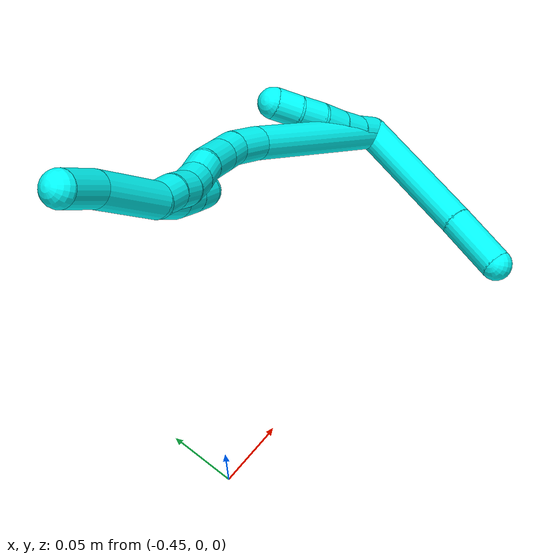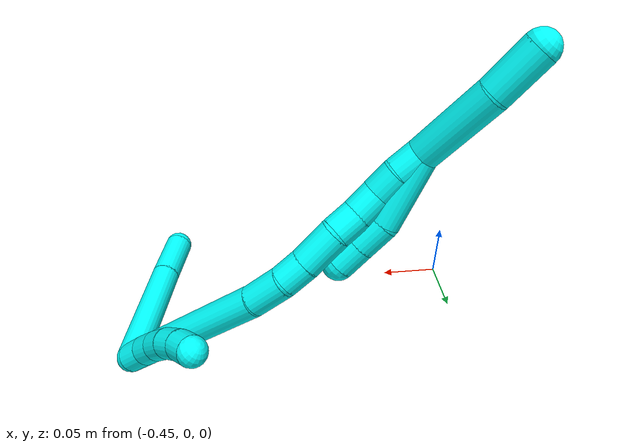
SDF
<sdf version="1.7">
 <world name="default">
  <model name="3">
   <static>0</static>
   <link name="3">
    <collision name="collision-cylinder-e_1_2_8">
     <pose>0.019307 -0.04758 -0.002553 1.62439 0.384974 0.405619</pose>
     <geometry><cylinder><radius>0.0125</radius><length>0.102823</length></cylinder></geometry>
     <surface>
      <friction><ode><mu>1.16</mu><mu2>1.16</mu2><slip1>0</slip1><slip2>0</slip2></ode></friction>
      <contact><ode><kp>1e+06</kp><kd>1</kd><max_vel>0</max_vel><min_depth>0.001</min_depth></ode></contact>
     </surface>
    </collision>
    <visual name="visual-cylinder-e_1_2_8">
     <pose>0.019307 -0.04758 -0.002553 1.62439 0.384974 0.405619</pose>
     <geometry><cylinder><radius>0.0125</radius><length>0.102823</length></cylinder></geometry>
     <material><ambient>0.003922 1 0.996078 1</ambient></material>
    </visual>
    <collision name="collision-cylinder-e_2_8_6">
     <pose>0.046954 -0.117173 -0.006626 1.63977 0.361369 0.386578</pose>
     <geometry><cylinder><radius>0.0125</radius><length>0.047177</length></cylinder></geometry>
     <surface>
      <friction><ode><mu>1.16</mu><mu2>1.16</mu2><slip1>0</slip1><slip2>0</slip2></ode></friction>
      <contact><ode><kp>1e+06</kp><kd>1</kd><max_vel>0</max_vel><min_depth>0.001</min_depth></ode></contact>
     </surface>
    </collision>
    <visual name="visual-cylinder-e_2_8_6">
     <pose>0.046954 -0.117173 -0.006626 1.63977 0.361369 0.386578</pose>
     <geometry><cylinder><radius>0.0125</radius><length>0.047177</length></cylinder></geometry>
     <material><ambient>0.003922 1 0.996078 1</ambient></material>
    </visual>
    <collision name="collision-cylinder-e_1_2_9">
     <pose>-0.001733 -9.4e-05 0.009848 0.009508 -0.174179 -0.00083</pose>
     <geometry><cylinder><radius>0.0125</radius><length>0.02</length></cylinder></geometry>
     <surface>
      <friction><ode><mu>1.16</mu><mu2>1.16</mu2><slip1>0</slip1><slip2>0</slip2></ode></friction>
      <contact><ode><kp>1e+06</kp><kd>1</kd><max_vel>0</max_vel><min_depth>0.001</min_depth></ode></contact>
     </surface>
    </collision>
    <visual name="visual-cylinder-e_1_2_9">
     <pose>-0.001733 -9.4e-05 0.009848 0.009508 -0.174179 -0.00083</pose>
     <geometry><cylinder><radius>0.0125</radius><length>0.02</length></cylinder></geometry>
     <material><ambient>0.003922 1 0.996078 1</ambient></material>
    </visual>
    <collision name="collision-cylinder-e_2_9_10">
     <pose>-0.005334 0.001497 0.029375 -0.172343 -0.187881 0.016278</pose>
     <geometry><cylinder><radius>0.0125</radius><length>0.02</length></cylinder></geometry>
     <surface>
      <friction><ode><mu>1.16</mu><mu2>1.16</mu2><slip1>0</slip1><slip2>0</slip2></ode></friction>
      <contact><ode><kp>1e+06</kp><kd>1</kd><max_vel>0</max_vel><min_depth>0.001</min_depth></ode></contact>
     </surface>
    </collision>
    <visual name="visual-cylinder-e_2_9_10">
     <pose>-0.005334 0.001497 0.029375 -0.172343 -0.187881 0.016278</pose>
     <geometry><cylinder><radius>0.0125</radius><length>0.02</length></cylinder></geometry>
     <material><ambient>0.003922 1 0.996078 1</ambient></material>
    </visual>
    <collision name="collision-cylinder-e_3_10_11">
     <pose>-0.009286 0.005958 0.048432 -0.287752 -0.21001 0.030536</pose>
     <geometry><cylinder><radius>0.0125</radius><length>0.02</length></cylinder></geometry>
     <surface>
      <friction><ode><mu>1.16</mu><mu2>1.16</mu2><slip1>0</slip1><slip2>0</slip2></ode></friction>
      <contact><ode><kp>1e+06</kp><kd>1</kd><max_vel>0</max_vel><min_depth>0.001</min_depth></ode></contact>
     </surface>
    </collision>
    <visual name="visual-cylinder-e_3_10_11">
     <pose>-0.009286 0.005958 0.048432 -0.287752 -0.21001 0.030536</pose>
     <geometry><cylinder><radius>0.0125</radius><length>0.02</length></cylinder></geometry>
     <material><ambient>0.003922 1 0.996078 1</ambient></material>
    </visual>
    <collision name="collision-cylinder-e_4_11_12">
     <pose>-0.014988 0.01201 0.066538 -0.359156 -0.370066 0.067931</pose>
     <geometry><cylinder><radius>0.0125</radius><length>0.02</length></cylinder></geometry>
     <surface>
      <friction><ode><mu>1.16</mu><mu2>1.16</mu2><slip1>0</slip1><slip2>0</slip2></ode></friction>
      <contact><ode><kp>1e+06</kp><kd>1</kd><max_vel>0</max_vel><min_depth>0.001</min_depth></ode></contact>
     </surface>
    </collision>
    <visual name="visual-cylinder-e_4_11_12">
     <pose>-0.014988 0.01201 0.066538 -0.359156 -0.370066 0.067931</pose>
     <geometry><cylinder><radius>0.0125</radius><length>0.02</length></cylinder></geometry>
     <material><ambient>0.003922 1 0.996078 1</ambient></material>
    </visual>
    <collision name="collision-cylinder-e_5_12_5">
     <pose>-0.023099 0.019694 0.083037 -0.515851 -0.466147 0.125083</pose>
     <geometry><cylinder><radius>0.0125</radius><length>0.02</length></cylinder></geometry>
     <surface>
      <friction><ode><mu>1.16</mu><mu2>1.16</mu2><slip1>0</slip1><slip2>0</slip2></ode></friction>
      <contact><ode><kp>1e+06</kp><kd>1</kd><max_vel>0</max_vel><min_depth>0.001</min_depth></ode></contact>
     </surface>
    </collision>
    <visual name="visual-cylinder-e_5_12_5">
     <pose>-0.023099 0.019694 0.083037 -0.515851 -0.466147 0.125083</pose>
     <geometry><cylinder><radius>0.0125</radius><length>0.02</length></cylinder></geometry>
     <material><ambient>0.003922 1 0.996078 1</ambient></material>
    </visual>
    <collision name="collision-cylinder-e_1_2_13">
     <pose>-0.01522 -0.007678 0.066561 0.11484 -0.223366 -0.012893</pose>
     <geometry><cylinder><radius>0.0125</radius><length>0.137418</length></cylinder></geometry>
     <surface>
      <friction><ode><mu>1.16</mu><mu2>1.16</mu2><slip1>0</slip1><slip2>0</slip2></ode></friction>
      <contact><ode><kp>1e+06</kp><kd>1</kd><max_vel>0</max_vel><min_depth>0.001</min_depth></ode></contact>
     </surface>
    </collision>
    <visual name="visual-cylinder-e_1_2_13">
     <pose>-0.01522 -0.007678 0.066561 0.11484 -0.223366 -0.012893</pose>
     <geometry><cylinder><radius>0.0125</radius><length>0.137418</length></cylinder></geometry>
     <material><ambient>0.003922 1 0.996078 1</ambient></material>
    </visual>
    <collision name="collision-cylinder-e_2_13_14">
     <pose>-0.032365 -0.018644 0.147488 0.225049 -0.129883 -0.014697</pose>
     <geometry><cylinder><radius>0.0125</radius><length>0.029728</length></cylinder></geometry>
     <surface>
      <friction><ode><mu>1.16</mu><mu2>1.16</mu2><slip1>0</slip1><slip2>0</slip2></ode></friction>
      <contact><ode><kp>1e+06</kp><kd>1</kd><max_vel>0</max_vel><min_depth>0.001</min_depth></ode></contact>
     </surface>
    </collision>
    <visual name="visual-cylinder-e_2_13_14">
     <pose>-0.032365 -0.018644 0.147488 0.225049 -0.129883 -0.014697</pose>
     <geometry><cylinder><radius>0.0125</radius><length>0.029728</length></cylinder></geometry>
     <material><ambient>0.003922 1 0.996078 1</ambient></material>
    </visual>
    <collision name="collision-cylinder-e_3_14_15">
     <pose>-0.034622 -0.026313 0.171398 0.430314 -0.031599 -0.006906</pose>
     <geometry><cylinder><radius>0.0125</radius><length>0.021009</length></cylinder></geometry>
     <surface>
      <friction><ode><mu>1.16</mu><mu2>1.16</mu2><slip1>0</slip1><slip2>0</slip2></ode></friction>
      <contact><ode><kp>1e+06</kp><kd>1</kd><max_vel>0</max_vel><min_depth>0.001</min_depth></ode></contact>
     </surface>
    </collision>
    <visual name="visual-cylinder-e_3_14_15">
     <pose>-0.034622 -0.026313 0.171398 0.430314 -0.031599 -0.006906</pose>
     <geometry><cylinder><radius>0.0125</radius><length>0.021009</length></cylinder></geometry>
     <material><ambient>0.003922 1 0.996078 1</ambient></material>
    </visual>
    <collision name="collision-cylinder-e_4_15_16">
     <pose>-0.033999 -0.03702 0.19502 0.422335 0.061795 0.013251</pose>
     <geometry><cylinder><radius>0.0125</radius><length>0.030931</length></cylinder></geometry>
     <surface>
      <friction><ode><mu>1.16</mu><mu2>1.16</mu2><slip1>0</slip1><slip2>0</slip2></ode></friction>
      <contact><ode><kp>1e+06</kp><kd>1</kd><max_vel>0</max_vel><min_depth>0.001</min_depth></ode></contact>
     </surface>
    </collision>
    <visual name="visual-cylinder-e_4_15_16">
     <pose>-0.033999 -0.03702 0.19502 0.422335 0.061795 0.013251</pose>
     <geometry><cylinder><radius>0.0125</radius><length>0.030931</length></cylinder></geometry>
     <material><ambient>0.003922 1 0.996078 1</ambient></material>
    </visual>
    <collision name="collision-cylinder-e_5_16_17">
     <pose>-0.033262 -0.04939 0.217143 0.644291 -0.021656 -0.007229</pose>
     <geometry><cylinder><radius>0.0125</radius><length>0.020124</length></cylinder></geometry>
     <surface>
      <friction><ode><mu>1.16</mu><mu2>1.16</mu2><slip1>0</slip1><slip2>0</slip2></ode></friction>
      <contact><ode><kp>1e+06</kp><kd>1</kd><max_vel>0</max_vel><min_depth>0.001</min_depth></ode></contact>
     </surface>
    </collision>
    <visual name="visual-cylinder-e_5_16_17">
     <pose>-0.033262 -0.04939 0.217143 0.644291 -0.021656 -0.007229</pose>
     <geometry><cylinder><radius>0.0125</radius><length>0.020124</length></cylinder></geometry>
     <material><ambient>0.003922 1 0.996078 1</ambient></material>
    </visual>
    <collision name="collision-cylinder-e_6_17_18">
     <pose>-0.032824 -0.060432 0.234054 0.513418 0.064353 0.016898</pose>
     <geometry><cylinder><radius>0.0125</radius><length>0.020403</length></cylinder></geometry>
     <surface>
      <friction><ode><mu>1.16</mu><mu2>1.16</mu2><slip1>0</slip1><slip2>0</slip2></ode></friction>
      <contact><ode><kp>1e+06</kp><kd>1</kd><max_vel>0</max_vel><min_depth>0.001</min_depth></ode></contact>
     </surface>
    </collision>
    <visual name="visual-cylinder-e_6_17_18">
     <pose>-0.032824 -0.060432 0.234054 0.513418 0.064353 0.016898</pose>
     <geometry><cylinder><radius>0.0125</radius><length>0.020403</length></cylinder></geometry>
     <material><ambient>0.003922 1 0.996078 1</ambient></material>
    </visual>
    <collision name="collision-cylinder-e_7_18_19">
     <pose>-0.031533 -0.068251 0.252565 0.284406 0.063087 0.009035</pose>
     <geometry><cylinder><radius>0.0125</radius><length>0.020134</length></cylinder></geometry>
     <surface>
      <friction><ode><mu>1.16</mu><mu2>1.16</mu2><slip1>0</slip1><slip2>0</slip2></ode></friction>
      <contact><ode><kp>1e+06</kp><kd>1</kd><max_vel>0</max_vel><min_depth>0.001</min_depth></ode></contact>
     </surface>
    </collision>
    <visual name="visual-cylinder-e_7_18_19">
     <pose>-0.031533 -0.068251 0.252565 0.284406 0.063087 0.009035</pose>
     <geometry><cylinder><radius>0.0125</radius><length>0.020134</length></cylinder></geometry>
     <material><ambient>0.003922 1 0.996078 1</ambient></material>
    </visual>
    <collision name="collision-cylinder-e_8_19_1">
     <pose>-0.031416 -0.074992 0.27153 0.398223 -0.051176 -0.010329</pose>
     <geometry><cylinder><radius>0.0125</radius><length>0.020253</length></cylinder></geometry>
     <surface>
      <friction><ode><mu>1.16</mu><mu2>1.16</mu2><slip1>0</slip1><slip2>0</slip2></ode></friction>
      <contact><ode><kp>1e+06</kp><kd>1</kd><max_vel>0</max_vel><min_depth>0.001</min_depth></ode></contact>
     </surface>
    </collision>
    <visual name="visual-cylinder-e_8_19_1">
     <pose>-0.031416 -0.074992 0.27153 0.398223 -0.051176 -0.010329</pose>
     <geometry><cylinder><radius>0.0125</radius><length>0.020253</length></cylinder></geometry>
     <material><ambient>0.003922 1 0.996078 1</ambient></material>
    </visual>
    <collision name="collision-cylinder-e_1_1_20">
     <pose>-0.041209 -0.071707 0.256026 -2.85908 -0.344482 1.77103</pose>
     <geometry><cylinder><radius>0.0125</radius><length>0.054928</length></cylinder></geometry>
     <surface>
      <friction><ode><mu>1.16</mu><mu2>1.16</mu2><slip1>0</slip1><slip2>0</slip2></ode></friction>
      <contact><ode><kp>1e+06</kp><kd>1</kd><max_vel>0</max_vel><min_depth>0.001</min_depth></ode></contact>
     </surface>
    </collision>
    <visual name="visual-cylinder-e_1_1_20">
     <pose>-0.041209 -0.071707 0.256026 -2.85908 -0.344482 1.77103</pose>
     <geometry><cylinder><radius>0.0125</radius><length>0.054928</length></cylinder></geometry>
     <material><ambient>0.003922 1 0.996078 1</ambient></material>
    </visual>
    <collision name="collision-cylinder-e_2_20_21">
     <pose>-0.050891 -0.061009 0.219962 -2.84038 -0.034624 0.227197</pose>
     <geometry><cylinder><radius>0.0125</radius><length>0.02355</length></cylinder></geometry>
     <surface>
      <friction><ode><mu>1.16</mu><mu2>1.16</mu2><slip1>0</slip1><slip2>0</slip2></ode></friction>
      <contact><ode><kp>1e+06</kp><kd>1</kd><max_vel>0</max_vel><min_depth>0.001</min_depth></ode></contact>
     </surface>
    </collision>
    <visual name="visual-cylinder-e_2_20_21">
     <pose>-0.050891 -0.061009 0.219962 -2.84038 -0.034624 0.227197</pose>
     <geometry><cylinder><radius>0.0125</radius><length>0.02355</length></cylinder></geometry>
     <material><ambient>0.003922 1 0.996078 1</ambient></material>
    </visual>
    <collision name="collision-cylinder-e_3_21_4">
     <pose>-0.051735 -0.054049 0.198546 -2.8131 -0.040517 0.243289</pose>
     <geometry><cylinder><radius>0.0125</radius><length>0.021522</length></cylinder></geometry>
     <surface>
      <friction><ode><mu>1.16</mu><mu2>1.16</mu2><slip1>0</slip1><slip2>0</slip2></ode></friction>
      <contact><ode><kp>1e+06</kp><kd>1</kd><max_vel>0</max_vel><min_depth>0.001</min_depth></ode></contact>
     </surface>
    </collision>
    <visual name="visual-cylinder-e_3_21_4">
     <pose>-0.051735 -0.054049 0.198546 -2.8131 -0.040517 0.243289</pose>
     <geometry><cylinder><radius>0.0125</radius><length>0.021522</length></cylinder></geometry>
     <material><ambient>0.003922 1 0.996078 1</ambient></material>
    </visual>
    <collision name="collision-cylinder-e_1_1_22">
     <pose>-0.031979 -0.078893 0.312257 -0.000648 -0.001426 0</pose>
     <geometry><cylinder><radius>0.0125</radius><length>0.062812</length></cylinder></geometry>
     <surface>
      <friction><ode><mu>1.16</mu><mu2>1.16</mu2><slip1>0</slip1><slip2>0</slip2></ode></friction>
      <contact><ode><kp>1e+06</kp><kd>1</kd><max_vel>0</max_vel><min_depth>0.001</min_depth></ode></contact>
     </surface>
    </collision>
    <visual name="visual-cylinder-e_1_1_22">
     <pose>-0.031979 -0.078893 0.312257 -0.000648 -0.001426 0</pose>
     <geometry><cylinder><radius>0.0125</radius><length>0.062812</length></cylinder></geometry>
     <material><ambient>0.003922 1 0.996078 1</ambient></material>
    </visual>
    <collision name="collision-cylinder-e_2_22_3">
     <pose>-0.030858 -0.08171 0.362002 0.153505 0.06275 0.004827</pose>
     <geometry><cylinder><radius>0.0125</radius><length>0.037188</length></cylinder></geometry>
     <surface>
      <friction><ode><mu>1.16</mu><mu2>1.16</mu2><slip1>0</slip1><slip2>0</slip2></ode></friction>
      <contact><ode><kp>1e+06</kp><kd>1</kd><max_vel>0</max_vel><min_depth>0.001</min_depth></ode></contact>
     </surface>
    </collision>
    <visual name="visual-cylinder-e_2_22_3">
     <pose>-0.030858 -0.08171 0.362002 0.153505 0.06275 0.004827</pose>
     <geometry><cylinder><radius>0.0125</radius><length>0.037188</length></cylinder></geometry>
     <material><ambient>0.003922 1 0.996078 1</ambient></material>
    </visual>
    <collision name="collision-sphere-3">
     <pose>-0.029692 -0.084548 0.380342 0 -0 0</pose>
     <geometry><sphere><radius>0.0125</radius></sphere></geometry>
     <surface>
      <friction><ode><mu>1.16</mu><mu2>1.16</mu2><slip1>0</slip1><slip2>0</slip2></ode></friction>
      <contact><ode><kp>1e+06</kp><kd>1</kd><max_vel>0</max_vel><min_depth>0.001</min_depth></ode></contact>
     </surface>
    </collision>
    <visual name="visual-sphere-3">
     <pose>-0.029692 -0.084548 0.380342 0 -0 0</pose>
     <geometry><sphere><radius>0.0125</radius></sphere></geometry>
     <material><ambient>0.003922 1 0.996078 1</ambient></material>
    </visual>
    <collision name="collision-sphere-22">
     <pose>-0.032024 -0.078873 0.343663 0 -0 0</pose>
     <geometry><sphere><radius>0.0125</radius></sphere></geometry>
     <surface>
      <friction><ode><mu>1.16</mu><mu2>1.16</mu2><slip1>0</slip1><slip2>0</slip2></ode></friction>
      <contact><ode><kp>1e+06</kp><kd>1</kd><max_vel>0</max_vel><min_depth>0.001</min_depth></ode></contact>
     </surface>
    </collision>
    <visual name="visual-sphere-22">
     <pose>-0.032024 -0.078873 0.343663 0 -0 0</pose>
     <geometry><sphere><radius>0.0125</radius></sphere></geometry>
     <material><ambient>0.003922 1 0.996078 1</ambient></material>
    </visual>
    <collision name="collision-sphere-4">
     <pose>-0.052171 -0.05058 0.188369 0 -0 0</pose>
     <geometry><sphere><radius>0.0125</radius></sphere></geometry>
     <surface>
      <friction><ode><mu>1.16</mu><mu2>1.16</mu2><slip1>0</slip1><slip2>0</slip2></ode></friction>
      <contact><ode><kp>1e+06</kp><kd>1</kd><max_vel>0</max_vel><min_depth>0.001</min_depth></ode></contact>
     </surface>
    </collision>
    <visual name="visual-sphere-4">
     <pose>-0.052171 -0.05058 0.188369 0 -0 0</pose>
     <geometry><sphere><radius>0.0125</radius></sphere></geometry>
     <material><ambient>0.003922 1 0.996078 1</ambient></material>
    </visual>
    <collision name="collision-sphere-21">
     <pose>-0.051299 -0.057518 0.208724 0 -0 0</pose>
     <geometry><sphere><radius>0.0125</radius></sphere></geometry>
     <surface>
      <friction><ode><mu>1.16</mu><mu2>1.16</mu2><slip1>0</slip1><slip2>0</slip2></ode></friction>
      <contact><ode><kp>1e+06</kp><kd>1</kd><max_vel>0</max_vel><min_depth>0.001</min_depth></ode></contact>
     </surface>
    </collision>
    <visual name="visual-sphere-21">
     <pose>-0.051299 -0.057518 0.208724 0 -0 0</pose>
     <geometry><sphere><radius>0.0125</radius></sphere></geometry>
     <material><ambient>0.003922 1 0.996078 1</ambient></material>
    </visual>
    <collision name="collision-sphere-20">
     <pose>-0.050484 -0.064501 0.2312 0 -0 0</pose>
     <geometry><sphere><radius>0.0125</radius></sphere></geometry>
     <surface>
      <friction><ode><mu>1.16</mu><mu2>1.16</mu2><slip1>0</slip1><slip2>0</slip2></ode></friction>
      <contact><ode><kp>1e+06</kp><kd>1</kd><max_vel>0</max_vel><min_depth>0.001</min_depth></ode></contact>
     </surface>
    </collision>
    <visual name="visual-sphere-20">
     <pose>-0.050484 -0.064501 0.2312 0 -0 0</pose>
     <geometry><sphere><radius>0.0125</radius></sphere></geometry>
     <material><ambient>0.003922 1 0.996078 1</ambient></material>
    </visual>
    <collision name="collision-sphere-11">
     <pose>-0.011371 0.008733 0.05781 0 -0 0</pose>
     <geometry><sphere><radius>0.0125</radius></sphere></geometry>
     <surface>
      <friction><ode><mu>1.16</mu><mu2>1.16</mu2><slip1>0</slip1><slip2>0</slip2></ode></friction>
      <contact><ode><kp>1e+06</kp><kd>1</kd><max_vel>0</max_vel><min_depth>0.001</min_depth></ode></contact>
     </surface>
    </collision>
    <visual name="visual-sphere-11">
     <pose>-0.011371 0.008733 0.05781 0 -0 0</pose>
     <geometry><sphere><radius>0.0125</radius></sphere></geometry>
     <material><ambient>0.003922 1 0.996078 1</ambient></material>
    </visual>
    <collision name="collision-sphere-10">
     <pose>-0.007202 0.003182 0.039053 0 -0 0</pose>
     <geometry><sphere><radius>0.0125</radius></sphere></geometry>
     <surface>
      <friction><ode><mu>1.16</mu><mu2>1.16</mu2><slip1>0</slip1><slip2>0</slip2></ode></friction>
      <contact><ode><kp>1e+06</kp><kd>1</kd><max_vel>0</max_vel><min_depth>0.001</min_depth></ode></contact>
     </surface>
    </collision>
    <visual name="visual-sphere-10">
     <pose>-0.007202 0.003182 0.039053 0 -0 0</pose>
     <geometry><sphere><radius>0.0125</radius></sphere></geometry>
     <material><ambient>0.003922 1 0.996078 1</ambient></material>
    </visual>
    <collision name="collision-sphere-6">
     <pose>0.055293 -0.139185 -0.008147 0 -0 0</pose>
     <geometry><sphere><radius>0.0125</radius></sphere></geometry>
     <surface>
      <friction><ode><mu>1.16</mu><mu2>1.16</mu2><slip1>0</slip1><slip2>0</slip2></ode></friction>
      <contact><ode><kp>1e+06</kp><kd>1</kd><max_vel>0</max_vel><min_depth>0.001</min_depth></ode></contact>
     </surface>
    </collision>
    <visual name="visual-sphere-6">
     <pose>0.055293 -0.139185 -0.008147 0 -0 0</pose>
     <geometry><sphere><radius>0.0125</radius></sphere></geometry>
     <material><ambient>0.003922 1 0.996078 1</ambient></material>
    </visual>
    <collision name="collision-sphere-9">
     <pose>-0.003466 -0.000187 0.019696 0 -0 0</pose>
     <geometry><sphere><radius>0.0125</radius></sphere></geometry>
     <surface>
      <friction><ode><mu>1.16</mu><mu2>1.16</mu2><slip1>0</slip1><slip2>0</slip2></ode></friction>
      <contact><ode><kp>1e+06</kp><kd>1</kd><max_vel>0</max_vel><min_depth>0.001</min_depth></ode></contact>
     </surface>
    </collision>
    <visual name="visual-sphere-9">
     <pose>-0.003466 -0.000187 0.019696 0 -0 0</pose>
     <geometry><sphere><radius>0.0125</radius></sphere></geometry>
     <material><ambient>0.003922 1 0.996078 1</ambient></material>
    </visual>
    <collision name="collision-sphere-2">
     <geometry><sphere><radius>0.0125</radius></sphere></geometry>
     <surface>
      <friction><ode><mu>1.16</mu><mu2>1.16</mu2><slip1>0</slip1><slip2>0</slip2></ode></friction>
      <contact><ode><kp>1e+06</kp><kd>1</kd><max_vel>0</max_vel><min_depth>0.001</min_depth></ode></contact>
     </surface>
    </collision>
    <visual name="visual-sphere-2">
     <geometry><sphere><radius>0.0125</radius></sphere></geometry>
     <material><ambient>0.003922 1 0.996078 1</ambient></material>
    </visual>
    <collision name="collision-sphere-19">
     <pose>-0.030898 -0.07107 0.262208 0 -0 0</pose>
     <geometry><sphere><radius>0.0125</radius></sphere></geometry>
     <surface>
      <friction><ode><mu>1.16</mu><mu2>1.16</mu2><slip1>0</slip1><slip2>0</slip2></ode></friction>
      <contact><ode><kp>1e+06</kp><kd>1</kd><max_vel>0</max_vel><min_depth>0.001</min_depth></ode></contact>
     </surface>
    </collision>
    <visual name="visual-sphere-19">
     <pose>-0.030898 -0.07107 0.262208 0 -0 0</pose>
     <geometry><sphere><radius>0.0125</radius></sphere></geometry>
     <material><ambient>0.003922 1 0.996078 1</ambient></material>
    </visual>
    <collision name="collision-sphere-8">
     <pose>0.038614 -0.095161 -0.005105 0 -0 0</pose>
     <geometry><sphere><radius>0.0125</radius></sphere></geometry>
     <surface>
      <friction><ode><mu>1.16</mu><mu2>1.16</mu2><slip1>0</slip1><slip2>0</slip2></ode></friction>
      <contact><ode><kp>1e+06</kp><kd>1</kd><max_vel>0</max_vel><min_depth>0.001</min_depth></ode></contact>
     </surface>
    </collision>
    <visual name="visual-sphere-8">
     <pose>0.038614 -0.095161 -0.005105 0 -0 0</pose>
     <geometry><sphere><radius>0.0125</radius></sphere></geometry>
     <material><ambient>0.003922 1 0.996078 1</ambient></material>
    </visual>
    <collision name="collision-sphere-12">
     <pose>-0.018604 0.015287 0.075266 0 -0 0</pose>
     <geometry><sphere><radius>0.0125</radius></sphere></geometry>
     <surface>
      <friction><ode><mu>1.16</mu><mu2>1.16</mu2><slip1>0</slip1><slip2>0</slip2></ode></friction>
      <contact><ode><kp>1e+06</kp><kd>1</kd><max_vel>0</max_vel><min_depth>0.001</min_depth></ode></contact>
     </surface>
    </collision>
    <visual name="visual-sphere-12">
     <pose>-0.018604 0.015287 0.075266 0 -0 0</pose>
     <geometry><sphere><radius>0.0125</radius></sphere></geometry>
     <material><ambient>0.003922 1 0.996078 1</ambient></material>
    </visual>
    <collision name="collision-sphere-5">
     <pose>-0.027593 0.0241 0.090807 0 -0 0</pose>
     <geometry><sphere><radius>0.0125</radius></sphere></geometry>
     <surface>
      <friction><ode><mu>1.16</mu><mu2>1.16</mu2><slip1>0</slip1><slip2>0</slip2></ode></friction>
      <contact><ode><kp>1e+06</kp><kd>1</kd><max_vel>0</max_vel><min_depth>0.001</min_depth></ode></contact>
     </surface>
    </collision>
    <visual name="visual-sphere-5">
     <pose>-0.027593 0.0241 0.090807 0 -0 0</pose>
     <geometry><sphere><radius>0.0125</radius></sphere></geometry>
     <material><ambient>0.003922 1 0.996078 1</ambient></material>
    </visual>
    <collision name="collision-sphere-13">
     <pose>-0.03044 -0.015355 0.133121 0 -0 0</pose>
     <geometry><sphere><radius>0.0125</radius></sphere></geometry>
     <surface>
      <friction><ode><mu>1.16</mu><mu2>1.16</mu2><slip1>0</slip1><slip2>0</slip2></ode></friction>
      <contact><ode><kp>1e+06</kp><kd>1</kd><max_vel>0</max_vel><min_depth>0.001</min_depth></ode></contact>
     </surface>
    </collision>
    <visual name="visual-sphere-13">
     <pose>-0.03044 -0.015355 0.133121 0 -0 0</pose>
     <geometry><sphere><radius>0.0125</radius></sphere></geometry>
     <material><ambient>0.003922 1 0.996078 1</ambient></material>
    </visual>
    <collision name="collision-sphere-14">
     <pose>-0.03429 -0.021933 0.161856 0 -0 0</pose>
     <geometry><sphere><radius>0.0125</radius></sphere></geometry>
     <surface>
      <friction><ode><mu>1.16</mu><mu2>1.16</mu2><slip1>0</slip1><slip2>0</slip2></ode></friction>
      <contact><ode><kp>1e+06</kp><kd>1</kd><max_vel>0</max_vel><min_depth>0.001</min_depth></ode></contact>
     </surface>
    </collision>
    <visual name="visual-sphere-14">
     <pose>-0.03429 -0.021933 0.161856 0 -0 0</pose>
     <geometry><sphere><radius>0.0125</radius></sphere></geometry>
     <material><ambient>0.003922 1 0.996078 1</ambient></material>
    </visual>
    <collision name="collision-sphere-15">
     <pose>-0.034954 -0.030693 0.18094 0 -0 0</pose>
     <geometry><sphere><radius>0.0125</radius></sphere></geometry>
     <surface>
      <friction><ode><mu>1.16</mu><mu2>1.16</mu2><slip1>0</slip1><slip2>0</slip2></ode></friction>
      <contact><ode><kp>1e+06</kp><kd>1</kd><max_vel>0</max_vel><min_depth>0.001</min_depth></ode></contact>
     </surface>
    </collision>
    <visual name="visual-sphere-15">
     <pose>-0.034954 -0.030693 0.18094 0 -0 0</pose>
     <geometry><sphere><radius>0.0125</radius></sphere></geometry>
     <material><ambient>0.003922 1 0.996078 1</ambient></material>
    </visual>
    <collision name="collision-sphere-16">
     <pose>-0.033044 -0.043347 0.2091 0 -0 0</pose>
     <geometry><sphere><radius>0.0125</radius></sphere></geometry>
     <surface>
      <friction><ode><mu>1.16</mu><mu2>1.16</mu2><slip1>0</slip1><slip2>0</slip2></ode></friction>
      <contact><ode><kp>1e+06</kp><kd>1</kd><max_vel>0</max_vel><min_depth>0.001</min_depth></ode></contact>
     </surface>
    </collision>
    <visual name="visual-sphere-16">
     <pose>-0.033044 -0.043347 0.2091 0 -0 0</pose>
     <geometry><sphere><radius>0.0125</radius></sphere></geometry>
     <material><ambient>0.003922 1 0.996078 1</ambient></material>
    </visual>
    <collision name="collision-sphere-17">
     <pose>-0.03348 -0.055432 0.225186 0 -0 0</pose>
     <geometry><sphere><radius>0.0125</radius></sphere></geometry>
     <surface>
      <friction><ode><mu>1.16</mu><mu2>1.16</mu2><slip1>0</slip1><slip2>0</slip2></ode></friction>
      <contact><ode><kp>1e+06</kp><kd>1</kd><max_vel>0</max_vel><min_depth>0.001</min_depth></ode></contact>
     </surface>
    </collision>
    <visual name="visual-sphere-17">
     <pose>-0.03348 -0.055432 0.225186 0 -0 0</pose>
     <geometry><sphere><radius>0.0125</radius></sphere></geometry>
     <material><ambient>0.003922 1 0.996078 1</ambient></material>
    </visual>
    <collision name="collision-sphere-18">
     <pose>-0.032167 -0.065432 0.242922 0 -0 0</pose>
     <geometry><sphere><radius>0.0125</radius></sphere></geometry>
     <surface>
      <friction><ode><mu>1.16</mu><mu2>1.16</mu2><slip1>0</slip1><slip2>0</slip2></ode></friction>
      <contact><ode><kp>1e+06</kp><kd>1</kd><max_vel>0</max_vel><min_depth>0.001</min_depth></ode></contact>
     </surface>
    </collision>
    <visual name="visual-sphere-18">
     <pose>-0.032167 -0.065432 0.242922 0 -0 0</pose>
     <geometry><sphere><radius>0.0125</radius></sphere></geometry>
     <material><ambient>0.003922 1 0.996078 1</ambient></material>
    </visual>
    <collision name="collision-sphere-1">
     <pose>-0.031934 -0.078913 0.280851 0 -0 0</pose>
     <geometry><sphere><radius>0.0125</radius></sphere></geometry>
     <surface>
      <friction><ode><mu>1.16</mu><mu2>1.16</mu2><slip1>0</slip1><slip2>0</slip2></ode></friction>
      <contact><ode><kp>1e+06</kp><kd>1</kd><max_vel>0</max_vel><min_depth>0.001</min_depth></ode></contact>
     </surface>
    </collision>
    <visual name="visual-sphere-1">
     <pose>-0.031934 -0.078913 0.280851 0 -0 0</pose>
     <geometry><sphere><radius>0.0125</radius></sphere></geometry>
     <material><ambient>0.003922 1 0.996078 1</ambient></material>
    </visual>
    <inertial>
     <pose>-0.016084 -0.043465 0.138207 0 -0 0</pose>
     <mass>0.75</mass>
     <inertia>
      <ixx>0.000406</ixx>
      <ixy>0</ixy>
      <ixz>0</ixz>
      <iyy>0.000319</iyy>
      <iyz>0</iyz>
      <izz>0.000168</izz>
     </inertia>
    </inertial>
   </link>
   <pose>-0.160142 0.09481 0.011837 0.220976 -0.630188 -0.701904</pose>
  </model>
 </world>
</sdf>
